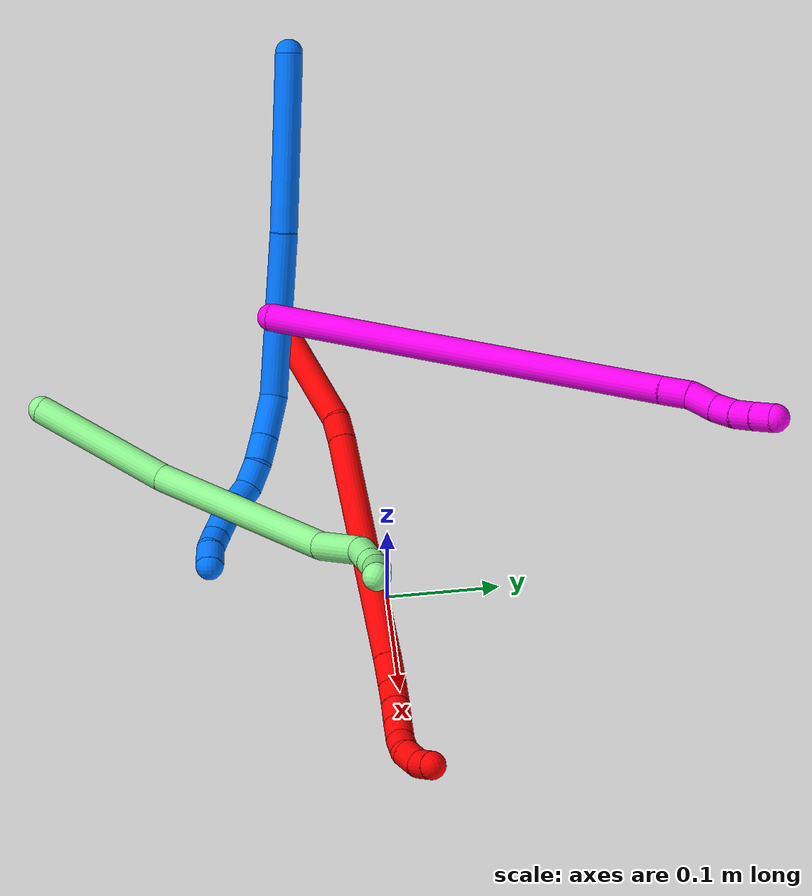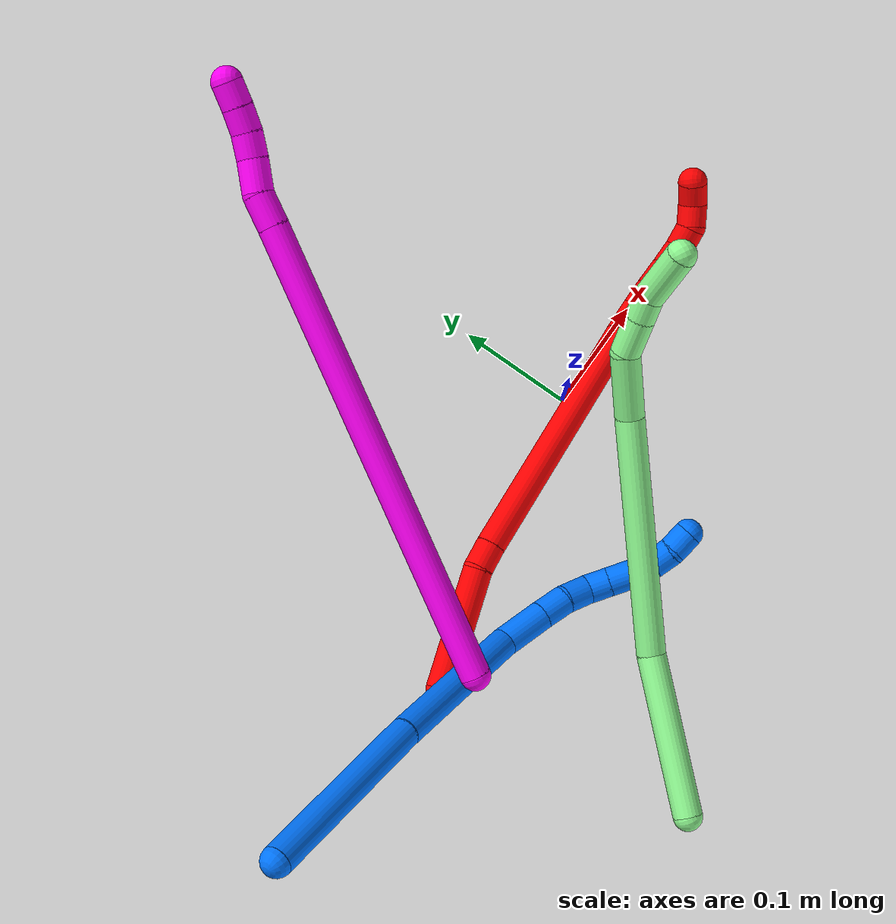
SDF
<sdf version="1.7">
 <world name="default">
  <model name="2">
   <static>0</static>
   <link name="2">
    <collision name="collision-cylinder-e_1_1_4">
     <pose>0.049592 0.006685 0.013835 -0.450108 1.27034 -0.334324</pose>
     <geometry><cylinder><radius>0.0125</radius><length>0.103836</length></cylinder></geometry>
     <surface>
      <friction><ode><mu>1.16</mu><mu2>1.16</mu2><slip1>0</slip1><slip2>0</slip2></ode></friction>
      <contact><ode><kp>1e+06</kp><kd>1</kd><max_vel>0</max_vel><min_depth>0.001</min_depth></ode></contact>
     </surface>
    </collision>
    <visual name="visual-cylinder-e_1_1_4">
     <pose>0.049592 0.006685 0.013835 -0.450108 1.27034 -0.334324</pose>
     <geometry><cylinder><radius>0.0125</radius><length>0.103836</length></cylinder></geometry>
     <material><ambient>1 0 0 1</ambient></material>
    </visual>
    <collision name="collision-cylinder-e_2_4_5">
     <pose>0.109808 0.011772 0.031379 0.406887 1.20754 0.282663</pose>
     <geometry><cylinder><radius>0.0125</radius><length>0.022731</length></cylinder></geometry>
     <surface>
      <friction><ode><mu>1.16</mu><mu2>1.16</mu2><slip1>0</slip1><slip2>0</slip2></ode></friction>
      <contact><ode><kp>1e+06</kp><kd>1</kd><max_vel>0</max_vel><min_depth>0.001</min_depth></ode></contact>
     </surface>
    </collision>
    <visual name="visual-cylinder-e_2_4_5">
     <pose>0.109808 0.011772 0.031379 0.406887 1.20754 0.282663</pose>
     <geometry><cylinder><radius>0.0125</radius><length>0.022731</length></cylinder></geometry>
     <material><ambient>1 0 0 1</ambient></material>
    </visual>
    <collision name="collision-cylinder-e_3_5_6">
     <pose>0.221184 -0.007371 0.076052 0.404663 1.15436 0.265578</pose>
     <geometry><cylinder><radius>0.0125</radius><length>0.220335</length></cylinder></geometry>
     <surface>
      <friction><ode><mu>1.16</mu><mu2>1.16</mu2><slip1>0</slip1><slip2>0</slip2></ode></friction>
      <contact><ode><kp>1e+06</kp><kd>1</kd><max_vel>0</max_vel><min_depth>0.001</min_depth></ode></contact>
     </surface>
    </collision>
    <visual name="visual-cylinder-e_3_5_6">
     <pose>0.221184 -0.007371 0.076052 0.404663 1.15436 0.265578</pose>
     <geometry><cylinder><radius>0.0125</radius><length>0.220335</length></cylinder></geometry>
     <material><ambient>1 0 0 1</ambient></material>
    </visual>
    <collision name="collision-cylinder-e_4_6_7">
     <pose>0.334475 -0.027264 0.122438 0.408611 1.13043 0.261327</pose>
     <geometry><cylinder><radius>0.0125</radius><length>0.027722</length></cylinder></geometry>
     <surface>
      <friction><ode><mu>1.16</mu><mu2>1.16</mu2><slip1>0</slip1><slip2>0</slip2></ode></friction>
      <contact><ode><kp>1e+06</kp><kd>1</kd><max_vel>0</max_vel><min_depth>0.001</min_depth></ode></contact>
     </surface>
    </collision>
    <visual name="visual-cylinder-e_4_6_7">
     <pose>0.334475 -0.027264 0.122438 0.408611 1.13043 0.261327</pose>
     <geometry><cylinder><radius>0.0125</radius><length>0.027722</length></cylinder></geometry>
     <material><ambient>1 0 0 1</ambient></material>
    </visual>
    <collision name="collision-cylinder-e_5_7_8">
     <pose>0.356221 -0.029176 0.133825 -0.072885 0.994712 -0.03958</pose>
     <geometry><cylinder><radius>0.0125</radius><length>0.021959</length></cylinder></geometry>
     <surface>
      <friction><ode><mu>1.16</mu><mu2>1.16</mu2><slip1>0</slip1><slip2>0</slip2></ode></friction>
      <contact><ode><kp>1e+06</kp><kd>1</kd><max_vel>0</max_vel><min_depth>0.001</min_depth></ode></contact>
     </surface>
    </collision>
    <visual name="visual-cylinder-e_5_7_8">
     <pose>0.356221 -0.029176 0.133825 -0.072885 0.994712 -0.03958</pose>
     <geometry><cylinder><radius>0.0125</radius><length>0.021959</length></cylinder></geometry>
     <material><ambient>1 0 0 1</ambient></material>
    </visual>
    <collision name="collision-cylinder-e_6_8_9">
     <pose>0.37452 -0.028315 0.146102 -0.067358 0.962903 -0.035201</pose>
     <geometry><cylinder><radius>0.0125</radius><length>0.022152</length></cylinder></geometry>
     <surface>
      <friction><ode><mu>1.16</mu><mu2>1.16</mu2><slip1>0</slip1><slip2>0</slip2></ode></friction>
      <contact><ode><kp>1e+06</kp><kd>1</kd><max_vel>0</max_vel><min_depth>0.001</min_depth></ode></contact>
     </surface>
    </collision>
    <visual name="visual-cylinder-e_6_8_9">
     <pose>0.37452 -0.028315 0.146102 -0.067358 0.962903 -0.035201</pose>
     <geometry><cylinder><radius>0.0125</radius><length>0.022152</length></cylinder></geometry>
     <material><ambient>1 0 0 1</ambient></material>
    </visual>
    <collision name="collision-cylinder-e_7_9_10">
     <pose>0.391886 -0.026925 0.158269 -0.163055 0.948623 -0.08385</pose>
     <geometry><cylinder><radius>0.0125</radius><length>0.020364</length></cylinder></geometry>
     <surface>
      <friction><ode><mu>1.16</mu><mu2>1.16</mu2><slip1>0</slip1><slip2>0</slip2></ode></friction>
      <contact><ode><kp>1e+06</kp><kd>1</kd><max_vel>0</max_vel><min_depth>0.001</min_depth></ode></contact>
     </surface>
    </collision>
    <visual name="visual-cylinder-e_7_9_10">
     <pose>0.391886 -0.026925 0.158269 -0.163055 0.948623 -0.08385</pose>
     <geometry><cylinder><radius>0.0125</radius><length>0.020364</length></cylinder></geometry>
     <material><ambient>1 0 0 1</ambient></material>
    </visual>
    <collision name="collision-cylinder-e_8_10_11">
     <pose>0.407713 -0.022249 0.170095 -0.556411 0.821153 -0.247394</pose>
     <geometry><cylinder><radius>0.0125</radius><length>0.020639</length></cylinder></geometry>
     <surface>
      <friction><ode><mu>1.16</mu><mu2>1.16</mu2><slip1>0</slip1><slip2>0</slip2></ode></friction>
      <contact><ode><kp>1e+06</kp><kd>1</kd><max_vel>0</max_vel><min_depth>0.001</min_depth></ode></contact>
     </surface>
    </collision>
    <visual name="visual-cylinder-e_8_10_11">
     <pose>0.407713 -0.022249 0.170095 -0.556411 0.821153 -0.247394</pose>
     <geometry><cylinder><radius>0.0125</radius><length>0.020639</length></cylinder></geometry>
     <material><ambient>1 0 0 1</ambient></material>
    </visual>
    <collision name="collision-cylinder-e_9_11_12">
     <pose>0.42435 -0.014459 0.177455 -1.24221 1.12812 -0.850175</pose>
     <geometry><cylinder><radius>0.0125</radius><length>0.020107</length></cylinder></geometry>
     <surface>
      <friction><ode><mu>1.16</mu><mu2>1.16</mu2><slip1>0</slip1><slip2>0</slip2></ode></friction>
      <contact><ode><kp>1e+06</kp><kd>1</kd><max_vel>0</max_vel><min_depth>0.001</min_depth></ode></contact>
     </surface>
    </collision>
    <visual name="visual-cylinder-e_9_11_12">
     <pose>0.42435 -0.014459 0.177455 -1.24221 1.12812 -0.850175</pose>
     <geometry><cylinder><radius>0.0125</radius><length>0.020107</length></cylinder></geometry>
     <material><ambient>1 0 0 1</ambient></material>
    </visual>
    <collision name="collision-cylinder-e_10_12_2">
     <pose>0.439572 -0.002682 0.180987 -1.29945 0.65482 -0.505069</pose>
     <geometry><cylinder><radius>0.0125</radius><length>0.020156</length></cylinder></geometry>
     <surface>
      <friction><ode><mu>1.16</mu><mu2>1.16</mu2><slip1>0</slip1><slip2>0</slip2></ode></friction>
      <contact><ode><kp>1e+06</kp><kd>1</kd><max_vel>0</max_vel><min_depth>0.001</min_depth></ode></contact>
     </surface>
    </collision>
    <visual name="visual-cylinder-e_10_12_2">
     <pose>0.439572 -0.002682 0.180987 -1.29945 0.65482 -0.505069</pose>
     <geometry><cylinder><radius>0.0125</radius><length>0.020156</length></cylinder></geometry>
     <material><ambient>1 0 0 1</ambient></material>
    </visual>
    <collision name="collision-sphere-2">
     <pose>0.44571 0.005019 0.18313 0 -0 0</pose>
     <geometry><sphere><radius>0.0125</radius></sphere></geometry>
     <surface>
      <friction><ode><mu>1.16</mu><mu2>1.16</mu2><slip1>0</slip1><slip2>0</slip2></ode></friction>
      <contact><ode><kp>1e+06</kp><kd>1</kd><max_vel>0</max_vel><min_depth>0.001</min_depth></ode></contact>
     </surface>
    </collision>
    <visual name="visual-sphere-2">
     <pose>0.44571 0.005019 0.18313 0 -0 0</pose>
     <geometry><sphere><radius>0.0125</radius></sphere></geometry>
     <material><ambient>1 0 0 1</ambient></material>
    </visual>
    <collision name="collision-sphere-12">
     <pose>0.433435 -0.010383 0.178845 0 -0 0</pose>
     <geometry><sphere><radius>0.0125</radius></sphere></geometry>
     <surface>
      <friction><ode><mu>1.16</mu><mu2>1.16</mu2><slip1>0</slip1><slip2>0</slip2></ode></friction>
      <contact><ode><kp>1e+06</kp><kd>1</kd><max_vel>0</max_vel><min_depth>0.001</min_depth></ode></contact>
     </surface>
    </collision>
    <visual name="visual-sphere-12">
     <pose>0.433435 -0.010383 0.178845 0 -0 0</pose>
     <geometry><sphere><radius>0.0125</radius></sphere></geometry>
     <material><ambient>1 0 0 1</ambient></material>
    </visual>
    <collision name="collision-sphere-11">
     <pose>0.415266 -0.018535 0.176065 0 -0 0</pose>
     <geometry><sphere><radius>0.0125</radius></sphere></geometry>
     <surface>
      <friction><ode><mu>1.16</mu><mu2>1.16</mu2><slip1>0</slip1><slip2>0</slip2></ode></friction>
      <contact><ode><kp>1e+06</kp><kd>1</kd><max_vel>0</max_vel><min_depth>0.001</min_depth></ode></contact>
     </surface>
    </collision>
    <visual name="visual-sphere-11">
     <pose>0.415266 -0.018535 0.176065 0 -0 0</pose>
     <geometry><sphere><radius>0.0125</radius></sphere></geometry>
     <material><ambient>1 0 0 1</ambient></material>
    </visual>
    <collision name="collision-sphere-10">
     <pose>0.40016 -0.025962 0.164124 0 -0 0</pose>
     <geometry><sphere><radius>0.0125</radius></sphere></geometry>
     <surface>
      <friction><ode><mu>1.16</mu><mu2>1.16</mu2><slip1>0</slip1><slip2>0</slip2></ode></friction>
      <contact><ode><kp>1e+06</kp><kd>1</kd><max_vel>0</max_vel><min_depth>0.001</min_depth></ode></contact>
     </surface>
    </collision>
    <visual name="visual-sphere-10">
     <pose>0.40016 -0.025962 0.164124 0 -0 0</pose>
     <geometry><sphere><radius>0.0125</radius></sphere></geometry>
     <material><ambient>1 0 0 1</ambient></material>
    </visual>
    <collision name="collision-sphere-9">
     <pose>0.383612 -0.027889 0.152413 0 -0 0</pose>
     <geometry><sphere><radius>0.0125</radius></sphere></geometry>
     <surface>
      <friction><ode><mu>1.16</mu><mu2>1.16</mu2><slip1>0</slip1><slip2>0</slip2></ode></friction>
      <contact><ode><kp>1e+06</kp><kd>1</kd><max_vel>0</max_vel><min_depth>0.001</min_depth></ode></contact>
     </surface>
    </collision>
    <visual name="visual-sphere-9">
     <pose>0.383612 -0.027889 0.152413 0 -0 0</pose>
     <geometry><sphere><radius>0.0125</radius></sphere></geometry>
     <material><ambient>1 0 0 1</ambient></material>
    </visual>
    <collision name="collision-sphere-4">
     <pose>0.099185 0.01337 0.027671 0 -0 0</pose>
     <geometry><sphere><radius>0.0125</radius></sphere></geometry>
     <surface>
      <friction><ode><mu>1.16</mu><mu2>1.16</mu2><slip1>0</slip1><slip2>0</slip2></ode></friction>
      <contact><ode><kp>1e+06</kp><kd>1</kd><max_vel>0</max_vel><min_depth>0.001</min_depth></ode></contact>
     </surface>
    </collision>
    <visual name="visual-sphere-4">
     <pose>0.099185 0.01337 0.027671 0 -0 0</pose>
     <geometry><sphere><radius>0.0125</radius></sphere></geometry>
     <material><ambient>1 0 0 1</ambient></material>
    </visual>
    <collision name="collision-sphere-1">
     <geometry><sphere><radius>0.0125</radius></sphere></geometry>
     <surface>
      <friction><ode><mu>1.16</mu><mu2>1.16</mu2><slip1>0</slip1><slip2>0</slip2></ode></friction>
      <contact><ode><kp>1e+06</kp><kd>1</kd><max_vel>0</max_vel><min_depth>0.001</min_depth></ode></contact>
     </surface>
    </collision>
    <visual name="visual-sphere-1">
     <geometry><sphere><radius>0.0125</radius></sphere></geometry>
     <material><ambient>1 0 0 1</ambient></material>
    </visual>
    <collision name="collision-sphere-8">
     <pose>0.365429 -0.02874 0.139791 0 -0 0</pose>
     <geometry><sphere><radius>0.0125</radius></sphere></geometry>
     <surface>
      <friction><ode><mu>1.16</mu><mu2>1.16</mu2><slip1>0</slip1><slip2>0</slip2></ode></friction>
      <contact><ode><kp>1e+06</kp><kd>1</kd><max_vel>0</max_vel><min_depth>0.001</min_depth></ode></contact>
     </surface>
    </collision>
    <visual name="visual-sphere-8">
     <pose>0.365429 -0.02874 0.139791 0 -0 0</pose>
     <geometry><sphere><radius>0.0125</radius></sphere></geometry>
     <material><ambient>1 0 0 1</ambient></material>
    </visual>
    <collision name="collision-sphere-5">
     <pose>0.120432 0.010174 0.035088 0 -0 0</pose>
     <geometry><sphere><radius>0.0125</radius></sphere></geometry>
     <surface>
      <friction><ode><mu>1.16</mu><mu2>1.16</mu2><slip1>0</slip1><slip2>0</slip2></ode></friction>
      <contact><ode><kp>1e+06</kp><kd>1</kd><max_vel>0</max_vel><min_depth>0.001</min_depth></ode></contact>
     </surface>
    </collision>
    <visual name="visual-sphere-5">
     <pose>0.120432 0.010174 0.035088 0 -0 0</pose>
     <geometry><sphere><radius>0.0125</radius></sphere></geometry>
     <material><ambient>1 0 0 1</ambient></material>
    </visual>
    <collision name="collision-sphere-6">
     <pose>0.321936 -0.024916 0.117016 0 -0 0</pose>
     <geometry><sphere><radius>0.0125</radius></sphere></geometry>
     <surface>
      <friction><ode><mu>1.16</mu><mu2>1.16</mu2><slip1>0</slip1><slip2>0</slip2></ode></friction>
      <contact><ode><kp>1e+06</kp><kd>1</kd><max_vel>0</max_vel><min_depth>0.001</min_depth></ode></contact>
     </surface>
    </collision>
    <visual name="visual-sphere-6">
     <pose>0.321936 -0.024916 0.117016 0 -0 0</pose>
     <geometry><sphere><radius>0.0125</radius></sphere></geometry>
     <material><ambient>1 0 0 1</ambient></material>
    </visual>
    <collision name="collision-sphere-7">
     <pose>0.347014 -0.029611 0.12786 0 -0 0</pose>
     <geometry><sphere><radius>0.0125</radius></sphere></geometry>
     <surface>
      <friction><ode><mu>1.16</mu><mu2>1.16</mu2><slip1>0</slip1><slip2>0</slip2></ode></friction>
      <contact><ode><kp>1e+06</kp><kd>1</kd><max_vel>0</max_vel><min_depth>0.001</min_depth></ode></contact>
     </surface>
    </collision>
    <visual name="visual-sphere-7">
     <pose>0.347014 -0.029611 0.12786 0 -0 0</pose>
     <geometry><sphere><radius>0.0125</radius></sphere></geometry>
     <material><ambient>1 0 0 1</ambient></material>
    </visual>
    <inertial>
     <pose>0.231116 -0.008077 0.084851 0 -0 0</pose>
     <mass>0.5</mass>
     <inertia>
      <ixx>0.000506</ixx>
      <ixy>0</ixy>
      <ixz>0</ixz>
      <iyy>0.001078</iyy>
      <iyz>0</iyz>
      <izz>-0.000785</izz>
     </inertia>
    </inertial>
   </link>
   <pose>-0.264425 -0.059591 0.038319 1.08877 0.171475 0.493834</pose>
  </model>
  <model name="10">
   <static>0</static>
   <link name="10">
    <collision name="collision-cylinder-e_1_1_4">
     <pose>0.017994 0.190696 -0.017457 -1.66209 0.09369 -0.102644</pose>
     <geometry><cylinder><radius>0.0125</radius><length>0.384673</length></cylinder></geometry>
     <surface>
      <friction><ode><mu>1.16</mu><mu2>1.16</mu2><slip1>0</slip1><slip2>0</slip2></ode></friction>
      <contact><ode><kp>1e+06</kp><kd>1</kd><max_vel>0</max_vel><min_depth>0.001</min_depth></ode></contact>
     </surface>
    </collision>
    <visual name="visual-cylinder-e_1_1_4">
     <pose>0.017994 0.190696 -0.017457 -1.66209 0.09369 -0.102644</pose>
     <geometry><cylinder><radius>0.0125</radius><length>0.384673</length></cylinder></geometry>
     <material><ambient>1 0 0.964706 1</ambient></material>
    </visual>
    <collision name="collision-cylinder-e_2_4_5">
     <pose>0.037102 0.39475 -0.03635 -1.67783 0.082769 -0.092126</pose>
     <geometry><cylinder><radius>0.0125</radius><length>0.026962</length></cylinder></geometry>
     <surface>
      <friction><ode><mu>1.16</mu><mu2>1.16</mu2><slip1>0</slip1><slip2>0</slip2></ode></friction>
      <contact><ode><kp>1e+06</kp><kd>1</kd><max_vel>0</max_vel><min_depth>0.001</min_depth></ode></contact>
     </surface>
    </collision>
    <visual name="visual-cylinder-e_2_4_5">
     <pose>0.037102 0.39475 -0.03635 -1.67783 0.082769 -0.092126</pose>
     <geometry><cylinder><radius>0.0125</radius><length>0.026962</length></cylinder></geometry>
     <material><ambient>1 0 0.964706 1</ambient></material>
    </visual>
    <collision name="collision-cylinder-e_3_5_6">
     <pose>0.042463 0.421011 -0.03676 -1.49148 0.317001 -0.293164</pose>
     <geometry><cylinder><radius>0.0125</radius><length>0.027246</length></cylinder></geometry>
     <surface>
      <friction><ode><mu>1.16</mu><mu2>1.16</mu2><slip1>0</slip1><slip2>0</slip2></ode></friction>
      <contact><ode><kp>1e+06</kp><kd>1</kd><max_vel>0</max_vel><min_depth>0.001</min_depth></ode></contact>
     </surface>
    </collision>
    <visual name="visual-cylinder-e_3_5_6">
     <pose>0.042463 0.421011 -0.03676 -1.49148 0.317001 -0.293164</pose>
     <geometry><cylinder><radius>0.0125</radius><length>0.027246</length></cylinder></geometry>
     <material><ambient>1 0 0.964706 1</ambient></material>
    </visual>
    <collision name="collision-cylinder-e_4_6_7">
     <pose>0.048097 0.444212 -0.034287 -1.43111 0.132647 -0.115342</pose>
     <geometry><cylinder><radius>0.0125</radius><length>0.020981</length></cylinder></geometry>
     <surface>
      <friction><ode><mu>1.16</mu><mu2>1.16</mu2><slip1>0</slip1><slip2>0</slip2></ode></friction>
      <contact><ode><kp>1e+06</kp><kd>1</kd><max_vel>0</max_vel><min_depth>0.001</min_depth></ode></contact>
     </surface>
    </collision>
    <visual name="visual-cylinder-e_4_6_7">
     <pose>0.048097 0.444212 -0.034287 -1.43111 0.132647 -0.115342</pose>
     <geometry><cylinder><radius>0.0125</radius><length>0.020981</length></cylinder></geometry>
     <material><ambient>1 0 0.964706 1</ambient></material>
    </visual>
    <collision name="collision-cylinder-e_5_7_8">
     <pose>0.049277 0.464518 -0.03209 -1.49617 -0.020661 0.019174</pose>
     <geometry><cylinder><radius>0.0125</radius><length>0.020079</length></cylinder></geometry>
     <surface>
      <friction><ode><mu>1.16</mu><mu2>1.16</mu2><slip1>0</slip1><slip2>0</slip2></ode></friction>
      <contact><ode><kp>1e+06</kp><kd>1</kd><max_vel>0</max_vel><min_depth>0.001</min_depth></ode></contact>
     </surface>
    </collision>
    <visual name="visual-cylinder-e_5_7_8">
     <pose>0.049277 0.464518 -0.03209 -1.49617 -0.020661 0.019174</pose>
     <geometry><cylinder><radius>0.0125</radius><length>0.020079</length></cylinder></geometry>
     <material><ambient>1 0 0.964706 1</ambient></material>
    </visual>
    <collision name="collision-cylinder-e_6_8_2">
     <pose>0.048696 0.484544 -0.031 -1.53665 -0.037268 0.036017</pose>
     <geometry><cylinder><radius>0.0125</radius><length>0.020059</length></cylinder></geometry>
     <surface>
      <friction><ode><mu>1.16</mu><mu2>1.16</mu2><slip1>0</slip1><slip2>0</slip2></ode></friction>
      <contact><ode><kp>1e+06</kp><kd>1</kd><max_vel>0</max_vel><min_depth>0.001</min_depth></ode></contact>
     </surface>
    </collision>
    <visual name="visual-cylinder-e_6_8_2">
     <pose>0.048696 0.484544 -0.031 -1.53665 -0.037268 0.036017</pose>
     <geometry><cylinder><radius>0.0125</radius><length>0.020059</length></cylinder></geometry>
     <material><ambient>1 0 0.964706 1</ambient></material>
    </visual>
    <collision name="collision-sphere-2">
     <pose>0.048322 0.49456 -0.030658 0 -0 0</pose>
     <geometry><sphere><radius>0.0125</radius></sphere></geometry>
     <surface>
      <friction><ode><mu>1.16</mu><mu2>1.16</mu2><slip1>0</slip1><slip2>0</slip2></ode></friction>
      <contact><ode><kp>1e+06</kp><kd>1</kd><max_vel>0</max_vel><min_depth>0.001</min_depth></ode></contact>
     </surface>
    </collision>
    <visual name="visual-sphere-2">
     <pose>0.048322 0.49456 -0.030658 0 -0 0</pose>
     <geometry><sphere><radius>0.0125</radius></sphere></geometry>
     <material><ambient>1 0 0.964706 1</ambient></material>
    </visual>
    <collision name="collision-sphere-4">
     <pose>0.035987 0.381391 -0.034915 0 -0 0</pose>
     <geometry><sphere><radius>0.0125</radius></sphere></geometry>
     <surface>
      <friction><ode><mu>1.16</mu><mu2>1.16</mu2><slip1>0</slip1><slip2>0</slip2></ode></friction>
      <contact><ode><kp>1e+06</kp><kd>1</kd><max_vel>0</max_vel><min_depth>0.001</min_depth></ode></contact>
     </surface>
    </collision>
    <visual name="visual-sphere-4">
     <pose>0.035987 0.381391 -0.034915 0 -0 0</pose>
     <geometry><sphere><radius>0.0125</radius></sphere></geometry>
     <material><ambient>1 0 0.964706 1</ambient></material>
    </visual>
    <collision name="collision-sphere-1">
     <geometry><sphere><radius>0.0125</radius></sphere></geometry>
     <surface>
      <friction><ode><mu>1.16</mu><mu2>1.16</mu2><slip1>0</slip1><slip2>0</slip2></ode></friction>
      <contact><ode><kp>1e+06</kp><kd>1</kd><max_vel>0</max_vel><min_depth>0.001</min_depth></ode></contact>
     </surface>
    </collision>
    <visual name="visual-sphere-1">
     <geometry><sphere><radius>0.0125</radius></sphere></geometry>
     <material><ambient>1 0 0.964706 1</ambient></material>
    </visual>
    <collision name="collision-sphere-8">
     <pose>0.04907 0.474527 -0.031342 0 -0 0</pose>
     <geometry><sphere><radius>0.0125</radius></sphere></geometry>
     <surface>
      <friction><ode><mu>1.16</mu><mu2>1.16</mu2><slip1>0</slip1><slip2>0</slip2></ode></friction>
      <contact><ode><kp>1e+06</kp><kd>1</kd><max_vel>0</max_vel><min_depth>0.001</min_depth></ode></contact>
     </surface>
    </collision>
    <visual name="visual-sphere-8">
     <pose>0.04907 0.474527 -0.031342 0 -0 0</pose>
     <geometry><sphere><radius>0.0125</radius></sphere></geometry>
     <material><ambient>1 0 0.964706 1</ambient></material>
    </visual>
    <collision name="collision-sphere-5">
     <pose>0.038216 0.408108 -0.037786 0 -0 0</pose>
     <geometry><sphere><radius>0.0125</radius></sphere></geometry>
     <surface>
      <friction><ode><mu>1.16</mu><mu2>1.16</mu2><slip1>0</slip1><slip2>0</slip2></ode></friction>
      <contact><ode><kp>1e+06</kp><kd>1</kd><max_vel>0</max_vel><min_depth>0.001</min_depth></ode></contact>
     </surface>
    </collision>
    <visual name="visual-sphere-5">
     <pose>0.038216 0.408108 -0.037786 0 -0 0</pose>
     <geometry><sphere><radius>0.0125</radius></sphere></geometry>
     <material><ambient>1 0 0.964706 1</ambient></material>
    </visual>
    <collision name="collision-sphere-6">
     <pose>0.046709 0.433914 -0.035734 0 -0 0</pose>
     <geometry><sphere><radius>0.0125</radius></sphere></geometry>
     <surface>
      <friction><ode><mu>1.16</mu><mu2>1.16</mu2><slip1>0</slip1><slip2>0</slip2></ode></friction>
      <contact><ode><kp>1e+06</kp><kd>1</kd><max_vel>0</max_vel><min_depth>0.001</min_depth></ode></contact>
     </surface>
    </collision>
    <visual name="visual-sphere-6">
     <pose>0.046709 0.433914 -0.035734 0 -0 0</pose>
     <geometry><sphere><radius>0.0125</radius></sphere></geometry>
     <material><ambient>1 0 0.964706 1</ambient></material>
    </visual>
    <collision name="collision-sphere-7">
     <pose>0.049484 0.454509 -0.032839 0 -0 0</pose>
     <geometry><sphere><radius>0.0125</radius></sphere></geometry>
     <surface>
      <friction><ode><mu>1.16</mu><mu2>1.16</mu2><slip1>0</slip1><slip2>0</slip2></ode></friction>
      <contact><ode><kp>1e+06</kp><kd>1</kd><max_vel>0</max_vel><min_depth>0.001</min_depth></ode></contact>
     </surface>
    </collision>
    <visual name="visual-sphere-7">
     <pose>0.049484 0.454509 -0.032839 0 -0 0</pose>
     <geometry><sphere><radius>0.0125</radius></sphere></geometry>
     <material><ambient>1 0 0.964706 1</ambient></material>
    </visual>
    <inertial>
     <pose>0.024109 0.247672 -0.021365 0 -0 0</pose>
     <mass>0.5</mass>
     <inertia>
      <ixx>0.00424</ixx>
      <ixy>0</ixy>
      <ixz>0</ixz>
      <iyy>-0.000833</iyy>
      <iyz>0</iyz>
      <izz>-0.005176</izz>
     </inertia>
    </inertial>
   </link>
   <pose>-0.241028 -0.077262 0.106066 0.57868 0.847574 -0.084601</pose>
  </model>
  <model name="13">
   <static>0</static>
   <link name="13">
    <collision name="collision-cylinder-e_1_1_4">
     <pose>0.052248 0.04168 -0.016938 -1.95679 0.859894 -1.19616</pose>
     <geometry><cylinder><radius>0.0125</radius><length>0.137899</length></cylinder></geometry>
     <surface>
      <friction><ode><mu>1.16</mu><mu2>1.16</mu2><slip1>0</slip1><slip2>0</slip2></ode></friction>
      <contact><ode><kp>1e+06</kp><kd>1</kd><max_vel>0</max_vel><min_depth>0.001</min_depth></ode></contact>
     </surface>
    </collision>
    <visual name="visual-cylinder-e_1_1_4">
     <pose>0.052248 0.04168 -0.016938 -1.95679 0.859894 -1.19616</pose>
     <geometry><cylinder><radius>0.0125</radius><length>0.137899</length></cylinder></geometry>
     <material><ambient>0.564706 0.984314 0.572549 1</ambient></material>
    </visual>
    <collision name="collision-cylinder-e_2_4_5">
     <pose>0.197421 0.115051 -0.063524 -2.32291 1.13389 -1.94528</pose>
     <geometry><cylinder><radius>0.0125</radius><length>0.205117</length></cylinder></geometry>
     <surface>
      <friction><ode><mu>1.16</mu><mu2>1.16</mu2><slip1>0</slip1><slip2>0</slip2></ode></friction>
      <contact><ode><kp>1e+06</kp><kd>1</kd><max_vel>0</max_vel><min_depth>0.001</min_depth></ode></contact>
     </surface>
    </collision>
    <visual name="visual-cylinder-e_2_4_5">
     <pose>0.197421 0.115051 -0.063524 -2.32291 1.13389 -1.94528</pose>
     <geometry><cylinder><radius>0.0125</radius><length>0.205117</length></cylinder></geometry>
     <material><ambient>0.564706 0.984314 0.572549 1</ambient></material>
    </visual>
    <collision name="collision-cylinder-e_3_5_6">
     <pose>0.318621 0.148007 -0.099145 -2.93269 1.35811 -2.88327</pose>
     <geometry><cylinder><radius>0.0125</radius><length>0.057854</length></cylinder></geometry>
     <surface>
      <friction><ode><mu>1.16</mu><mu2>1.16</mu2><slip1>0</slip1><slip2>0</slip2></ode></friction>
      <contact><ode><kp>1e+06</kp><kd>1</kd><max_vel>0</max_vel><min_depth>0.001</min_depth></ode></contact>
     </surface>
    </collision>
    <visual name="visual-cylinder-e_3_5_6">
     <pose>0.318621 0.148007 -0.099145 -2.93269 1.35811 -2.88327</pose>
     <geometry><cylinder><radius>0.0125</radius><length>0.057854</length></cylinder></geometry>
     <material><ambient>0.564706 0.984314 0.572549 1</ambient></material>
    </visual>
    <collision name="collision-cylinder-e_4_6_7">
     <pose>0.359742 0.147721 -0.114293 2.97401 0.943909 2.81542</pose>
     <geometry><cylinder><radius>0.0125</radius><length>0.031723</length></cylinder></geometry>
     <surface>
      <friction><ode><mu>1.16</mu><mu2>1.16</mu2><slip1>0</slip1><slip2>0</slip2></ode></friction>
      <contact><ode><kp>1e+06</kp><kd>1</kd><max_vel>0</max_vel><min_depth>0.001</min_depth></ode></contact>
     </surface>
    </collision>
    <visual name="visual-cylinder-e_4_6_7">
     <pose>0.359742 0.147721 -0.114293 2.97401 0.943909 2.81542</pose>
     <geometry><cylinder><radius>0.0125</radius><length>0.031723</length></cylinder></geometry>
     <material><ambient>0.564706 0.984314 0.572549 1</ambient></material>
    </visual>
    <collision name="collision-cylinder-e_5_7_8">
     <pose>0.381014 0.14472 -0.129066 2.88831 0.969288 2.66707</pose>
     <geometry><cylinder><radius>0.0125</radius><length>0.02044</length></cylinder></geometry>
     <surface>
      <friction><ode><mu>1.16</mu><mu2>1.16</mu2><slip1>0</slip1><slip2>0</slip2></ode></friction>
      <contact><ode><kp>1e+06</kp><kd>1</kd><max_vel>0</max_vel><min_depth>0.001</min_depth></ode></contact>
     </surface>
    </collision>
    <visual name="visual-cylinder-e_5_7_8">
     <pose>0.381014 0.14472 -0.129066 2.88831 0.969288 2.66707</pose>
     <geometry><cylinder><radius>0.0125</radius><length>0.02044</length></cylinder></geometry>
     <material><ambient>0.564706 0.984314 0.572549 1</ambient></material>
    </visual>
    <collision name="collision-cylinder-e_6_8_2">
     <pose>0.406125 0.133884 -0.148265 2.53748 0.790225 1.85826</pose>
     <geometry><cylinder><radius>0.0125</radius><length>0.046967</length></cylinder></geometry>
     <surface>
      <friction><ode><mu>1.16</mu><mu2>1.16</mu2><slip1>0</slip1><slip2>0</slip2></ode></friction>
      <contact><ode><kp>1e+06</kp><kd>1</kd><max_vel>0</max_vel><min_depth>0.001</min_depth></ode></contact>
     </surface>
    </collision>
    <visual name="visual-cylinder-e_6_8_2">
     <pose>0.406125 0.133884 -0.148265 2.53748 0.790225 1.85826</pose>
     <geometry><cylinder><radius>0.0125</radius><length>0.046967</length></cylinder></geometry>
     <material><ambient>0.564706 0.984314 0.572549 1</ambient></material>
    </visual>
    <collision name="collision-sphere-2">
     <pose>0.42281 0.124498 -0.161865 0 -0 0</pose>
     <geometry><sphere><radius>0.0125</radius></sphere></geometry>
     <surface>
      <friction><ode><mu>1.16</mu><mu2>1.16</mu2><slip1>0</slip1><slip2>0</slip2></ode></friction>
      <contact><ode><kp>1e+06</kp><kd>1</kd><max_vel>0</max_vel><min_depth>0.001</min_depth></ode></contact>
     </surface>
    </collision>
    <visual name="visual-sphere-2">
     <pose>0.42281 0.124498 -0.161865 0 -0 0</pose>
     <geometry><sphere><radius>0.0125</radius></sphere></geometry>
     <material><ambient>0.564706 0.984314 0.572549 1</ambient></material>
    </visual>
    <collision name="collision-sphere-4">
     <pose>0.104496 0.083361 -0.033876 0 -0 0</pose>
     <geometry><sphere><radius>0.0125</radius></sphere></geometry>
     <surface>
      <friction><ode><mu>1.16</mu><mu2>1.16</mu2><slip1>0</slip1><slip2>0</slip2></ode></friction>
      <contact><ode><kp>1e+06</kp><kd>1</kd><max_vel>0</max_vel><min_depth>0.001</min_depth></ode></contact>
     </surface>
    </collision>
    <visual name="visual-sphere-4">
     <pose>0.104496 0.083361 -0.033876 0 -0 0</pose>
     <geometry><sphere><radius>0.0125</radius></sphere></geometry>
     <material><ambient>0.564706 0.984314 0.572549 1</ambient></material>
    </visual>
    <collision name="collision-sphere-1">
     <geometry><sphere><radius>0.0125</radius></sphere></geometry>
     <surface>
      <friction><ode><mu>1.16</mu><mu2>1.16</mu2><slip1>0</slip1><slip2>0</slip2></ode></friction>
      <contact><ode><kp>1e+06</kp><kd>1</kd><max_vel>0</max_vel><min_depth>0.001</min_depth></ode></contact>
     </surface>
    </collision>
    <visual name="visual-sphere-1">
     <geometry><sphere><radius>0.0125</radius></sphere></geometry>
     <material><ambient>0.564706 0.984314 0.572549 1</ambient></material>
    </visual>
    <collision name="collision-sphere-8">
     <pose>0.38944 0.143271 -0.134665 0 -0 0</pose>
     <geometry><sphere><radius>0.0125</radius></sphere></geometry>
     <surface>
      <friction><ode><mu>1.16</mu><mu2>1.16</mu2><slip1>0</slip1><slip2>0</slip2></ode></friction>
      <contact><ode><kp>1e+06</kp><kd>1</kd><max_vel>0</max_vel><min_depth>0.001</min_depth></ode></contact>
     </surface>
    </collision>
    <visual name="visual-sphere-8">
     <pose>0.38944 0.143271 -0.134665 0 -0 0</pose>
     <geometry><sphere><radius>0.0125</radius></sphere></geometry>
     <material><ambient>0.564706 0.984314 0.572549 1</ambient></material>
    </visual>
    <collision name="collision-sphere-5">
     <pose>0.290346 0.146741 -0.093172 0 -0 0</pose>
     <geometry><sphere><radius>0.0125</radius></sphere></geometry>
     <surface>
      <friction><ode><mu>1.16</mu><mu2>1.16</mu2><slip1>0</slip1><slip2>0</slip2></ode></friction>
      <contact><ode><kp>1e+06</kp><kd>1</kd><max_vel>0</max_vel><min_depth>0.001</min_depth></ode></contact>
     </surface>
    </collision>
    <visual name="visual-sphere-5">
     <pose>0.290346 0.146741 -0.093172 0 -0 0</pose>
     <geometry><sphere><radius>0.0125</radius></sphere></geometry>
     <material><ambient>0.564706 0.984314 0.572549 1</ambient></material>
    </visual>
    <collision name="collision-sphere-6">
     <pose>0.346896 0.149273 -0.105119 0 -0 0</pose>
     <geometry><sphere><radius>0.0125</radius></sphere></geometry>
     <surface>
      <friction><ode><mu>1.16</mu><mu2>1.16</mu2><slip1>0</slip1><slip2>0</slip2></ode></friction>
      <contact><ode><kp>1e+06</kp><kd>1</kd><max_vel>0</max_vel><min_depth>0.001</min_depth></ode></contact>
     </surface>
    </collision>
    <visual name="visual-sphere-6">
     <pose>0.346896 0.149273 -0.105119 0 -0 0</pose>
     <geometry><sphere><radius>0.0125</radius></sphere></geometry>
     <material><ambient>0.564706 0.984314 0.572549 1</ambient></material>
    </visual>
    <collision name="collision-sphere-7">
     <pose>0.372587 0.146169 -0.123467 0 -0 0</pose>
     <geometry><sphere><radius>0.0125</radius></sphere></geometry>
     <surface>
      <friction><ode><mu>1.16</mu><mu2>1.16</mu2><slip1>0</slip1><slip2>0</slip2></ode></friction>
      <contact><ode><kp>1e+06</kp><kd>1</kd><max_vel>0</max_vel><min_depth>0.001</min_depth></ode></contact>
     </surface>
    </collision>
    <visual name="visual-sphere-7">
     <pose>0.372587 0.146169 -0.123467 0 -0 0</pose>
     <geometry><sphere><radius>0.0125</radius></sphere></geometry>
     <material><ambient>0.564706 0.984314 0.572549 1</ambient></material>
    </visual>
    <inertial>
     <pose>0.208815 0.103684 -0.068658 0 -0 0</pose>
     <mass>0.5</mass>
     <inertia>
      <ixx>-0.00045</ixx>
      <ixy>0</ixy>
      <ixz>0</ixz>
      <iyy>0.00037</iyy>
      <iyz>0</iyz>
      <izz>-0.001227</izz>
     </inertia>
    </inertial>
   </link>
   <pose>-0.230493 -0.28852 0.012497 -1.46638 -0.742626 1.01566</pose>
  </model>
  <model name="14">
   <static>0</static>
   <link name="14">
    <collision name="collision-cylinder-e_1_1_4">
     <pose>-0.004768 0.002983 -0.080481 -3.10454 -0.059132 2.02222</pose>
     <geometry><cylinder><radius>0.0125</radius><length>0.161354</length></cylinder></geometry>
     <surface>
      <friction><ode><mu>1.16</mu><mu2>1.16</mu2><slip1>0</slip1><slip2>0</slip2></ode></friction>
      <contact><ode><kp>1e+06</kp><kd>1</kd><max_vel>0</max_vel><min_depth>0.001</min_depth></ode></contact>
     </surface>
    </collision>
    <visual name="visual-cylinder-e_1_1_4">
     <pose>-0.004768 0.002983 -0.080481 -3.10454 -0.059132 2.02222</pose>
     <geometry><cylinder><radius>0.0125</radius><length>0.161354</length></cylinder></geometry>
     <material><ambient>0 0.462745 1 1</ambient></material>
    </visual>
    <collision name="collision-cylinder-e_2_4_5">
     <pose>-0.019495 0.008717 -0.234321 -3.10412 -0.134841 2.60019</pose>
     <geometry><cylinder><radius>0.0125</radius><length>0.148167</length></cylinder></geometry>
     <surface>
      <friction><ode><mu>1.16</mu><mu2>1.16</mu2><slip1>0</slip1><slip2>0</slip2></ode></friction>
      <contact><ode><kp>1e+06</kp><kd>1</kd><max_vel>0</max_vel><min_depth>0.001</min_depth></ode></contact>
     </surface>
    </collision>
    <visual name="visual-cylinder-e_2_4_5">
     <pose>-0.019495 0.008717 -0.234321 -3.10412 -0.134841 2.60019</pose>
     <geometry><cylinder><radius>0.0125</radius><length>0.148167</length></cylinder></geometry>
     <material><ambient>0 0.462745 1 1</ambient></material>
    </visual>
    <collision name="collision-cylinder-e_3_5_6">
     <pose>-0.02496 0.005217 -0.326719 2.82435 0.220634 1.21127</pose>
     <geometry><cylinder><radius>0.0125</radius><length>0.041072</length></cylinder></geometry>
     <surface>
      <friction><ode><mu>1.16</mu><mu2>1.16</mu2><slip1>0</slip1><slip2>0</slip2></ode></friction>
      <contact><ode><kp>1e+06</kp><kd>1</kd><max_vel>0</max_vel><min_depth>0.001</min_depth></ode></contact>
     </surface>
    </collision>
    <visual name="visual-cylinder-e_3_5_6">
     <pose>-0.02496 0.005217 -0.326719 2.82435 0.220634 1.21127</pose>
     <geometry><cylinder><radius>0.0125</radius><length>0.041072</length></cylinder></geometry>
     <material><ambient>0 0.462745 1 1</ambient></material>
    </visual>
    <collision name="collision-cylinder-e_4_6_7">
     <pose>-0.017876 -0.005128 -0.357044 2.79361 0.212422 1.09043</pose>
     <geometry><cylinder><radius>0.0125</radius><length>0.024564</length></cylinder></geometry>
     <surface>
      <friction><ode><mu>1.16</mu><mu2>1.16</mu2><slip1>0</slip1><slip2>0</slip2></ode></friction>
      <contact><ode><kp>1e+06</kp><kd>1</kd><max_vel>0</max_vel><min_depth>0.001</min_depth></ode></contact>
     </surface>
    </collision>
    <visual name="visual-cylinder-e_4_6_7">
     <pose>-0.017876 -0.005128 -0.357044 2.79361 0.212422 1.09043</pose>
     <geometry><cylinder><radius>0.0125</radius><length>0.024564</length></cylinder></geometry>
     <material><ambient>0 0.462745 1 1</ambient></material>
    </visual>
    <collision name="collision-cylinder-e_5_7_8">
     <pose>-0.015474 -0.013614 -0.379625 2.77082 -0.015439 -0.082277</pose>
     <geometry><cylinder><radius>0.0125</radius><length>0.02424</length></cylinder></geometry>
     <surface>
      <friction><ode><mu>1.16</mu><mu2>1.16</mu2><slip1>0</slip1><slip2>0</slip2></ode></friction>
      <contact><ode><kp>1e+06</kp><kd>1</kd><max_vel>0</max_vel><min_depth>0.001</min_depth></ode></contact>
     </surface>
    </collision>
    <visual name="visual-cylinder-e_5_7_8">
     <pose>-0.015474 -0.013614 -0.379625 2.77082 -0.015439 -0.082277</pose>
     <geometry><cylinder><radius>0.0125</radius><length>0.02424</length></cylinder></geometry>
     <material><ambient>0 0.462745 1 1</ambient></material>
    </visual>
    <collision name="collision-cylinder-e_6_8_9">
     <pose>-0.012751 -0.024829 -0.397633 2.34792 0.295094 0.681641</pose>
     <geometry><cylinder><radius>0.0125</radius><length>0.020009</length></cylinder></geometry>
     <surface>
      <friction><ode><mu>1.16</mu><mu2>1.16</mu2><slip1>0</slip1><slip2>0</slip2></ode></friction>
      <contact><ode><kp>1e+06</kp><kd>1</kd><max_vel>0</max_vel><min_depth>0.001</min_depth></ode></contact>
     </surface>
    </collision>
    <visual name="visual-cylinder-e_6_8_9">
     <pose>-0.012751 -0.024829 -0.397633 2.34792 0.295094 0.681641</pose>
     <geometry><cylinder><radius>0.0125</radius><length>0.020009</length></cylinder></geometry>
     <material><ambient>0 0.462745 1 1</ambient></material>
    </visual>
    <collision name="collision-cylinder-e_7_9_10">
     <pose>-0.006653 -0.038696 -0.41108 2.3339 0.316287 0.714355</pose>
     <geometry><cylinder><radius>0.0125</radius><length>0.020507</length></cylinder></geometry>
     <surface>
      <friction><ode><mu>1.16</mu><mu2>1.16</mu2><slip1>0</slip1><slip2>0</slip2></ode></friction>
      <contact><ode><kp>1e+06</kp><kd>1</kd><max_vel>0</max_vel><min_depth>0.001</min_depth></ode></contact>
     </surface>
    </collision>
    <visual name="visual-cylinder-e_7_9_10">
     <pose>-0.006653 -0.038696 -0.41108 2.3339 0.316287 0.714355</pose>
     <geometry><cylinder><radius>0.0125</radius><length>0.020507</length></cylinder></geometry>
     <material><ambient>0 0.462745 1 1</ambient></material>
    </visual>
    <collision name="collision-cylinder-e_8_10_11">
     <pose>-0.001263 -0.050939 -0.426118 2.58197 0.220936 0.736768</pose>
     <geometry><cylinder><radius>0.0125</radius><length>0.020082</length></cylinder></geometry>
     <surface>
      <friction><ode><mu>1.16</mu><mu2>1.16</mu2><slip1>0</slip1><slip2>0</slip2></ode></friction>
      <contact><ode><kp>1e+06</kp><kd>1</kd><max_vel>0</max_vel><min_depth>0.001</min_depth></ode></contact>
     </surface>
    </collision>
    <visual name="visual-cylinder-e_8_10_11">
     <pose>-0.001263 -0.050939 -0.426118 2.58197 0.220936 0.736768</pose>
     <geometry><cylinder><radius>0.0125</radius><length>0.020082</length></cylinder></geometry>
     <material><ambient>0 0.462745 1 1</ambient></material>
    </visual>
    <collision name="collision-cylinder-e_9_11_12">
     <pose>0.006951 -0.061596 -0.440258 2.39003 0.645193 1.40581</pose>
     <geometry><cylinder><radius>0.0125</radius><length>0.020001</length></cylinder></geometry>
     <surface>
      <friction><ode><mu>1.16</mu><mu2>1.16</mu2><slip1>0</slip1><slip2>0</slip2></ode></friction>
      <contact><ode><kp>1e+06</kp><kd>1</kd><max_vel>0</max_vel><min_depth>0.001</min_depth></ode></contact>
     </surface>
    </collision>
    <visual name="visual-cylinder-e_9_11_12">
     <pose>0.006951 -0.061596 -0.440258 2.39003 0.645193 1.40581</pose>
     <geometry><cylinder><radius>0.0125</radius><length>0.020001</length></cylinder></geometry>
     <material><ambient>0 0.462745 1 1</ambient></material>
    </visual>
    <collision name="collision-cylinder-e_10_12_2">
     <pose>0.018943 -0.070137 -0.453497 2.74656 0.64061 2.05593</pose>
     <geometry><cylinder><radius>0.0125</radius><length>0.020004</length></cylinder></geometry>
     <surface>
      <friction><ode><mu>1.16</mu><mu2>1.16</mu2><slip1>0</slip1><slip2>0</slip2></ode></friction>
      <contact><ode><kp>1e+06</kp><kd>1</kd><max_vel>0</max_vel><min_depth>0.001</min_depth></ode></contact>
     </surface>
    </collision>
    <visual name="visual-cylinder-e_10_12_2">
     <pose>0.018943 -0.070137 -0.453497 2.74656 0.64061 2.05593</pose>
     <geometry><cylinder><radius>0.0125</radius><length>0.020004</length></cylinder></geometry>
     <material><ambient>0 0.462745 1 1</ambient></material>
    </visual>
    <collision name="collision-sphere-2">
     <pose>0.024921 -0.073223 -0.460898 0 -0 0</pose>
     <geometry><sphere><radius>0.0125</radius></sphere></geometry>
     <surface>
      <friction><ode><mu>1.16</mu><mu2>1.16</mu2><slip1>0</slip1><slip2>0</slip2></ode></friction>
      <contact><ode><kp>1e+06</kp><kd>1</kd><max_vel>0</max_vel><min_depth>0.001</min_depth></ode></contact>
     </surface>
    </collision>
    <visual name="visual-sphere-2">
     <pose>0.024921 -0.073223 -0.460898 0 -0 0</pose>
     <geometry><sphere><radius>0.0125</radius></sphere></geometry>
     <material><ambient>0 0.462745 1 1</ambient></material>
    </visual>
    <collision name="collision-sphere-12">
     <pose>0.012965 -0.067051 -0.446096 0 -0 0</pose>
     <geometry><sphere><radius>0.0125</radius></sphere></geometry>
     <surface>
      <friction><ode><mu>1.16</mu><mu2>1.16</mu2><slip1>0</slip1><slip2>0</slip2></ode></friction>
      <contact><ode><kp>1e+06</kp><kd>1</kd><max_vel>0</max_vel><min_depth>0.001</min_depth></ode></contact>
     </surface>
    </collision>
    <visual name="visual-sphere-12">
     <pose>0.012965 -0.067051 -0.446096 0 -0 0</pose>
     <geometry><sphere><radius>0.0125</radius></sphere></geometry>
     <material><ambient>0 0.462745 1 1</ambient></material>
    </visual>
    <collision name="collision-sphere-11">
     <pose>0.000938 -0.05614 -0.43442 0 -0 0</pose>
     <geometry><sphere><radius>0.0125</radius></sphere></geometry>
     <surface>
      <friction><ode><mu>1.16</mu><mu2>1.16</mu2><slip1>0</slip1><slip2>0</slip2></ode></friction>
      <contact><ode><kp>1e+06</kp><kd>1</kd><max_vel>0</max_vel><min_depth>0.001</min_depth></ode></contact>
     </surface>
    </collision>
    <visual name="visual-sphere-11">
     <pose>0.000938 -0.05614 -0.43442 0 -0 0</pose>
     <geometry><sphere><radius>0.0125</radius></sphere></geometry>
     <material><ambient>0 0.462745 1 1</ambient></material>
    </visual>
    <collision name="collision-sphere-10">
     <pose>-0.003463 -0.045738 -0.417815 0 -0 0</pose>
     <geometry><sphere><radius>0.0125</radius></sphere></geometry>
     <surface>
      <friction><ode><mu>1.16</mu><mu2>1.16</mu2><slip1>0</slip1><slip2>0</slip2></ode></friction>
      <contact><ode><kp>1e+06</kp><kd>1</kd><max_vel>0</max_vel><min_depth>0.001</min_depth></ode></contact>
     </surface>
    </collision>
    <visual name="visual-sphere-10">
     <pose>-0.003463 -0.045738 -0.417815 0 -0 0</pose>
     <geometry><sphere><radius>0.0125</radius></sphere></geometry>
     <material><ambient>0 0.462745 1 1</ambient></material>
    </visual>
    <collision name="collision-sphere-9">
     <pose>-0.009842 -0.031653 -0.404345 0 -0 0</pose>
     <geometry><sphere><radius>0.0125</radius></sphere></geometry>
     <surface>
      <friction><ode><mu>1.16</mu><mu2>1.16</mu2><slip1>0</slip1><slip2>0</slip2></ode></friction>
      <contact><ode><kp>1e+06</kp><kd>1</kd><max_vel>0</max_vel><min_depth>0.001</min_depth></ode></contact>
     </surface>
    </collision>
    <visual name="visual-sphere-9">
     <pose>-0.009842 -0.031653 -0.404345 0 -0 0</pose>
     <geometry><sphere><radius>0.0125</radius></sphere></geometry>
     <material><ambient>0 0.462745 1 1</ambient></material>
    </visual>
    <collision name="collision-sphere-4">
     <pose>-0.009536 0.005967 -0.160962 0 -0 0</pose>
     <geometry><sphere><radius>0.0125</radius></sphere></geometry>
     <surface>
      <friction><ode><mu>1.16</mu><mu2>1.16</mu2><slip1>0</slip1><slip2>0</slip2></ode></friction>
      <contact><ode><kp>1e+06</kp><kd>1</kd><max_vel>0</max_vel><min_depth>0.001</min_depth></ode></contact>
     </surface>
    </collision>
    <visual name="visual-sphere-4">
     <pose>-0.009536 0.005967 -0.160962 0 -0 0</pose>
     <geometry><sphere><radius>0.0125</radius></sphere></geometry>
     <material><ambient>0 0.462745 1 1</ambient></material>
    </visual>
    <collision name="collision-sphere-1">
     <geometry><sphere><radius>0.0125</radius></sphere></geometry>
     <surface>
      <friction><ode><mu>1.16</mu><mu2>1.16</mu2><slip1>0</slip1><slip2>0</slip2></ode></friction>
      <contact><ode><kp>1e+06</kp><kd>1</kd><max_vel>0</max_vel><min_depth>0.001</min_depth></ode></contact>
     </surface>
    </collision>
    <visual name="visual-sphere-1">
     <geometry><sphere><radius>0.0125</radius></sphere></geometry>
     <material><ambient>0 0.462745 1 1</ambient></material>
    </visual>
    <collision name="collision-sphere-8">
     <pose>-0.015661 -0.018005 -0.39092 0 -0 0</pose>
     <geometry><sphere><radius>0.0125</radius></sphere></geometry>
     <surface>
      <friction><ode><mu>1.16</mu><mu2>1.16</mu2><slip1>0</slip1><slip2>0</slip2></ode></friction>
      <contact><ode><kp>1e+06</kp><kd>1</kd><max_vel>0</max_vel><min_depth>0.001</min_depth></ode></contact>
     </surface>
    </collision>
    <visual name="visual-sphere-8">
     <pose>-0.015661 -0.018005 -0.39092 0 -0 0</pose>
     <geometry><sphere><radius>0.0125</radius></sphere></geometry>
     <material><ambient>0 0.462745 1 1</ambient></material>
    </visual>
    <collision name="collision-sphere-5">
     <pose>-0.029454 0.011468 -0.307681 0 -0 0</pose>
     <geometry><sphere><radius>0.0125</radius></sphere></geometry>
     <surface>
      <friction><ode><mu>1.16</mu><mu2>1.16</mu2><slip1>0</slip1><slip2>0</slip2></ode></friction>
      <contact><ode><kp>1e+06</kp><kd>1</kd><max_vel>0</max_vel><min_depth>0.001</min_depth></ode></contact>
     </surface>
    </collision>
    <visual name="visual-sphere-5">
     <pose>-0.029454 0.011468 -0.307681 0 -0 0</pose>
     <geometry><sphere><radius>0.0125</radius></sphere></geometry>
     <material><ambient>0 0.462745 1 1</ambient></material>
    </visual>
    <collision name="collision-sphere-6">
     <pose>-0.020466 -0.001034 -0.345757 0 -0 0</pose>
     <geometry><sphere><radius>0.0125</radius></sphere></geometry>
     <surface>
      <friction><ode><mu>1.16</mu><mu2>1.16</mu2><slip1>0</slip1><slip2>0</slip2></ode></friction>
      <contact><ode><kp>1e+06</kp><kd>1</kd><max_vel>0</max_vel><min_depth>0.001</min_depth></ode></contact>
     </surface>
    </collision>
    <visual name="visual-sphere-6">
     <pose>-0.020466 -0.001034 -0.345757 0 -0 0</pose>
     <geometry><sphere><radius>0.0125</radius></sphere></geometry>
     <material><ambient>0 0.462745 1 1</ambient></material>
    </visual>
    <collision name="collision-sphere-7">
     <pose>-0.015287 -0.009223 -0.368331 0 -0 0</pose>
     <geometry><sphere><radius>0.0125</radius></sphere></geometry>
     <surface>
      <friction><ode><mu>1.16</mu><mu2>1.16</mu2><slip1>0</slip1><slip2>0</slip2></ode></friction>
      <contact><ode><kp>1e+06</kp><kd>1</kd><max_vel>0</max_vel><min_depth>0.001</min_depth></ode></contact>
     </surface>
    </collision>
    <visual name="visual-sphere-7">
     <pose>-0.015287 -0.009223 -0.368331 0 -0 0</pose>
     <geometry><sphere><radius>0.0125</radius></sphere></geometry>
     <material><ambient>0 0.462745 1 1</ambient></material>
    </visual>
    <inertial>
     <pose>-0.010792 -0.006834 -0.243834 0 -0 0</pose>
     <mass>0.5</mass>
     <inertia><ixx>9.5e-05</ixx><ixy>0</ixy><ixz>0</ixz><iyy>0.000858</iyy><iyz>0</iyz><izz>2e-06</izz></inertia>
    </inertial>
   </link>
   <pose>-0.432418 -0.039779 0.241735 -0.604802 -0.792075 0.615608</pose>
  </model>
 </world>
</sdf>
